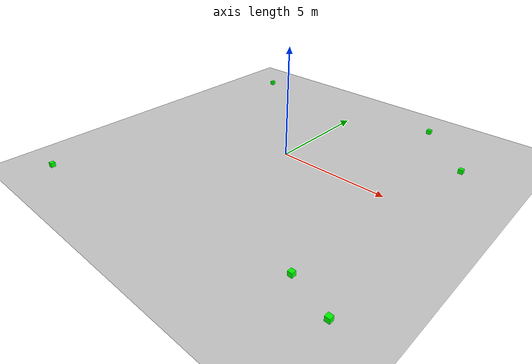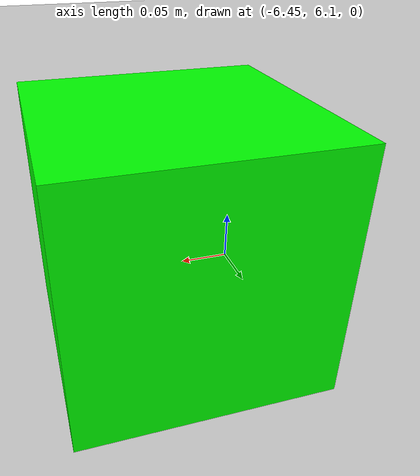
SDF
<sdf version="1.7">
 <world name="default">
  <light name="sun" type="directional">
   <pose>0 0 10 0 -0 0</pose>
   <diffuse>0.8 0.8 0.8 1</diffuse>
   <specular>0.2 0.2 0.2 1</specular>
   <attenuation>
    <range>1000</range>
    <constant>0.9</constant>
    <linear>0.01</linear>
    <quadratic>0.001</quadratic>
   </attenuation>
   <direction>-0.5 0.1 -0.9</direction>
   <spot><inner_angle>0</inner_angle><outer_angle>0</outer_angle><falloff>0</falloff></spot>
  </light>
  <model name="ground_plane">
   <static>1</static>
   <link name="link">
    <collision name="collision">
     <geometry><plane><normal>0 0 1</normal><size>100 100</size></plane></geometry>
     <surface>
      <contact><collide_bitmask>65535</collide_bitmask></contact>
      <friction><ode><mu>100</mu><mu2>50</mu2></ode></friction>
     </surface>
    </collision>
    <visual name="visual">
     <cast_shadows>0</cast_shadows>
     <geometry><plane><normal>0 0 1</normal><size>100 100</size></plane></geometry>
     <material>
      <script><uri>file://media/materials/scripts/gazebo.material</uri><name>Gazebo/Grey</name></script>
     </material>
    </visual>
   </link>
  </model>
  <gravity>0 0 -9.8</gravity>
  <magnetic_field>6e-06 2.3e-05 -4.2e-05</magnetic_field>
  <atmosphere type="adiabatic"/>
  <physics type="ode">
   <max_step_size>0.001</max_step_size>
   <real_time_factor>1</real_time_factor>
   <real_time_update_rate>1000</real_time_update_rate>
  </physics>
  <scene><ambient>0.4 0.4 0.4 1</ambient><background>0.7 0.7 0.7 1</background><shadows>1</shadows></scene>
  <spherical_coordinates>
   <surface_model>EARTH_WGS84</surface_model>
   <latitude_deg>0</latitude_deg>
   <longitude_deg>0</longitude_deg>
   <elevation>0</elevation>
   <heading_deg>0</heading_deg>
  </spherical_coordinates>
  <model name="green">
   <link name="link">
    <inertial>
     <mass>1</mass>
     <inertia>
      <ixx>0.166667</ixx>
      <ixy>0</ixy>
      <ixz>0</ixz>
      <iyy>0.166667</iyy>
      <iyz>0</iyz>
      <izz>0.166667</izz>
     </inertia>
    </inertial>
    <visual name="visual">
     <geometry><box><size>0.2 0.2 0.2</size></box></geometry>
     <material>
      <script><name>Gazebo/Grey</name><uri>file://media/materials/scripts/gazebo.material</uri></script>
      <shader type="pixel"><normal_map>__default__</normal_map></shader>
      <ambient>0 1 0 1</ambient>
      <diffuse>0 1 0 1</diffuse>
      <specular>0 1 0 1</specular>
      <emissive>0 0 0 1</emissive>
     </material>
    </visual>
    <collision name="collision">
     <geometry><box><size>1 1 1</size></box></geometry>
     <surface>
      <friction>
       <ode><mu>1</mu><mu2>1</mu2><fdir1>0 0 0</fdir1><slip1>0</slip1><slip2>0</slip2></ode>
       <torsional>
        <coefficient>1</coefficient>
        <patch_radius>0</patch_radius>
        <surface_radius>0</surface_radius>
        <use_patch_radius>1</use_patch_radius>
        <ode><slip>0</slip></ode>
       </torsional>
      </friction>
      <bounce><restitution_coefficient>0</restitution_coefficient><threshold>1e+06</threshold></bounce>
      <contact>
       <collide_without_contact>0</collide_without_contact>
       <collide_without_contact_bitmask>1</collide_without_contact_bitmask>
       <collide_bitmask>1</collide_bitmask>
       <ode>
        <soft_cfm>0</soft_cfm>
        <soft_erp>0.2</soft_erp>
        <kp>1e+13</kp>
        <kd>1</kd>
        <max_vel>0.01</max_vel>
        <min_depth>0</min_depth>
       </ode>
       <bullet>
        <split_impulse>1</split_impulse>
        <split_impulse_penetration_threshold>-0.01</split_impulse_penetration_threshold>
        <soft_cfm>0</soft_cfm>
        <soft_erp>0.2</soft_erp>
        <kp>1e+13</kp>
        <kd>1</kd>
       </bullet>
      </contact>
     </surface>
    </collision>
   </link>
   <static>0</static>
   <pose>-6.62798 -7.88323 0.113019 -1e-05 0 0</pose>
  </model>
  <model name="green_clone">
   <link name="link">
    <inertial>
     <mass>1</mass>
     <inertia>
      <ixx>0.166667</ixx>
      <ixy>0</ixy>
      <ixz>0</ixz>
      <iyy>0.166667</iyy>
      <iyz>0</iyz>
      <izz>0.166667</izz>
     </inertia>
    </inertial>
    <visual name="visual">
     <geometry><box><size>0.2 0.2 0.2</size></box></geometry>
     <material>
      <script><name>Gazebo/Grey</name><uri>file://media/materials/scripts/gazebo.material</uri></script>
      <shader type="pixel"><normal_map>__default__</normal_map></shader>
      <ambient>0 1 0 1</ambient>
      <diffuse>0 1 0 1</diffuse>
      <specular>0 1 0 1</specular>
      <emissive>0 0 0 1</emissive>
     </material>
    </visual>
    <collision name="collision">
     <geometry><box><size>1 1 1</size></box></geometry>
     <surface>
      <friction>
       <ode><mu>1</mu><mu2>1</mu2><fdir1>0 0 0</fdir1><slip1>0</slip1><slip2>0</slip2></ode>
       <torsional>
        <coefficient>1</coefficient>
        <patch_radius>0</patch_radius>
        <surface_radius>0</surface_radius>
        <use_patch_radius>1</use_patch_radius>
        <ode><slip>0</slip></ode>
       </torsional>
      </friction>
      <bounce><restitution_coefficient>0</restitution_coefficient><threshold>1e+06</threshold></bounce>
      <contact>
       <collide_without_contact>0</collide_without_contact>
       <collide_without_contact_bitmask>1</collide_without_contact_bitmask>
       <collide_bitmask>1</collide_bitmask>
       <ode>
        <soft_cfm>0</soft_cfm>
        <soft_erp>0.2</soft_erp>
        <kp>1e+13</kp>
        <kd>1</kd>
        <max_vel>0.01</max_vel>
        <min_depth>0</min_depth>
       </ode>
       <bullet>
        <split_impulse>1</split_impulse>
        <split_impulse_penetration_threshold>-0.01</split_impulse_penetration_threshold>
        <soft_cfm>0</soft_cfm>
        <soft_erp>0.2</soft_erp>
        <kp>1e+13</kp>
        <kd>1</kd>
       </bullet>
      </contact>
     </surface>
    </collision>
   </link>
   <static>0</static>
   <pose>5.22319 -5.86787 0.113019 -1e-05 0 0</pose>
  </model>
  <model name="green_clone_0">
   <link name="link">
    <inertial>
     <mass>1</mass>
     <inertia>
      <ixx>0.166667</ixx>
      <ixy>0</ixy>
      <ixz>0</ixz>
      <iyy>0.166667</iyy>
      <iyz>0</iyz>
      <izz>0.166667</izz>
     </inertia>
    </inertial>
    <visual name="visual">
     <geometry><box><size>0.2 0.2 0.2</size></box></geometry>
     <material>
      <script><name>Gazebo/Grey</name><uri>file://media/materials/scripts/gazebo.material</uri></script>
      <shader type="pixel"><normal_map>__default__</normal_map></shader>
      <ambient>0 1 0 1</ambient>
      <diffuse>0 1 0 1</diffuse>
      <specular>0 1 0 1</specular>
      <emissive>0 0 0 1</emissive>
     </material>
    </visual>
    <collision name="collision">
     <geometry><box><size>1 1 1</size></box></geometry>
     <surface>
      <friction>
       <ode><mu>1</mu><mu2>1</mu2><fdir1>0 0 0</fdir1><slip1>0</slip1><slip2>0</slip2></ode>
       <torsional>
        <coefficient>1</coefficient>
        <patch_radius>0</patch_radius>
        <surface_radius>0</surface_radius>
        <use_patch_radius>1</use_patch_radius>
        <ode><slip>0</slip></ode>
       </torsional>
      </friction>
      <bounce><restitution_coefficient>0</restitution_coefficient><threshold>1e+06</threshold></bounce>
      <contact>
       <collide_without_contact>0</collide_without_contact>
       <collide_without_contact_bitmask>1</collide_without_contact_bitmask>
       <collide_bitmask>1</collide_bitmask>
       <ode>
        <soft_cfm>0</soft_cfm>
        <soft_erp>0.2</soft_erp>
        <kp>1e+13</kp>
        <kd>1</kd>
        <max_vel>0.01</max_vel>
        <min_depth>0</min_depth>
       </ode>
       <bullet>
        <split_impulse>1</split_impulse>
        <split_impulse_penetration_threshold>-0.01</split_impulse_penetration_threshold>
        <soft_cfm>0</soft_cfm>
        <soft_erp>0.2</soft_erp>
        <kp>1e+13</kp>
        <kd>1</kd>
       </bullet>
      </contact>
     </surface>
    </collision>
   </link>
   <static>0</static>
   <pose>7.13238 -6.52536 0.113019 -1e-05 0 0</pose>
  </model>
  <model name="green_clone_1">
   <link name="link">
    <inertial>
     <mass>1</mass>
     <inertia>
      <ixx>0.166667</ixx>
      <ixy>0</ixy>
      <ixz>0</ixz>
      <iyy>0.166667</iyy>
      <iyz>0</iyz>
      <izz>0.166667</izz>
     </inertia>
    </inertial>
    <visual name="visual">
     <geometry><box><size>0.2 0.2 0.2</size></box></geometry>
     <material>
      <script><name>Gazebo/Grey</name><uri>file://media/materials/scripts/gazebo.material</uri></script>
      <shader type="pixel"><normal_map>__default__</normal_map></shader>
      <ambient>0 1 0 1</ambient>
      <diffuse>0 1 0 1</diffuse>
      <specular>0 1 0 1</specular>
      <emissive>0 0 0 1</emissive>
     </material>
    </visual>
    <collision name="collision">
     <geometry><box><size>1 1 1</size></box></geometry>
     <surface>
      <friction>
       <ode><mu>1</mu><mu2>1</mu2><fdir1>0 0 0</fdir1><slip1>0</slip1><slip2>0</slip2></ode>
       <torsional>
        <coefficient>1</coefficient>
        <patch_radius>0</patch_radius>
        <surface_radius>0</surface_radius>
        <use_patch_radius>1</use_patch_radius>
        <ode><slip>0</slip></ode>
       </torsional>
      </friction>
      <bounce><restitution_coefficient>0</restitution_coefficient><threshold>1e+06</threshold></bounce>
      <contact>
       <collide_without_contact>0</collide_without_contact>
       <collide_without_contact_bitmask>1</collide_without_contact_bitmask>
       <collide_bitmask>1</collide_bitmask>
       <ode>
        <soft_cfm>0</soft_cfm>
        <soft_erp>0.2</soft_erp>
        <kp>1e+13</kp>
        <kd>1</kd>
        <max_vel>0.01</max_vel>
        <min_depth>0</min_depth>
       </ode>
       <bullet>
        <split_impulse>1</split_impulse>
        <split_impulse_penetration_threshold>-0.01</split_impulse_penetration_threshold>
        <soft_cfm>0</soft_cfm>
        <soft_erp>0.2</soft_erp>
        <kp>1e+13</kp>
        <kd>1</kd>
       </bullet>
      </contact>
     </surface>
    </collision>
   </link>
   <static>0</static>
   <pose>6.47455 3.85546 0.113019 -1e-05 0 0</pose>
  </model>
  <model name="green_clone_2">
   <link name="link">
    <inertial>
     <mass>1</mass>
     <inertia>
      <ixx>0.166667</ixx>
      <ixy>0</ixy>
      <ixz>0</ixz>
      <iyy>0.166667</iyy>
      <iyz>0</iyz>
      <izz>0.166667</izz>
     </inertia>
    </inertial>
    <visual name="visual">
     <geometry><box><size>0.2 0.2 0.2</size></box></geometry>
     <material>
      <script><name>Gazebo/Grey</name><uri>file://media/materials/scripts/gazebo.material</uri></script>
      <shader type="pixel"><normal_map>__default__</normal_map></shader>
      <ambient>0 1 0 1</ambient>
      <diffuse>0 1 0 1</diffuse>
      <specular>0 1 0 1</specular>
      <emissive>0 0 0 1</emissive>
     </material>
    </visual>
    <collision name="collision">
     <geometry><box><size>1 1 1</size></box></geometry>
     <surface>
      <friction>
       <ode><mu>1</mu><mu2>1</mu2><fdir1>0 0 0</fdir1><slip1>0</slip1><slip2>0</slip2></ode>
       <torsional>
        <coefficient>1</coefficient>
        <patch_radius>0</patch_radius>
        <surface_radius>0</surface_radius>
        <use_patch_radius>1</use_patch_radius>
        <ode><slip>0</slip></ode>
       </torsional>
      </friction>
      <bounce><restitution_coefficient>0</restitution_coefficient><threshold>1e+06</threshold></bounce>
      <contact>
       <collide_without_contact>0</collide_without_contact>
       <collide_without_contact_bitmask>1</collide_without_contact_bitmask>
       <collide_bitmask>1</collide_bitmask>
       <ode>
        <soft_cfm>0</soft_cfm>
        <soft_erp>0.2</soft_erp>
        <kp>1e+13</kp>
        <kd>1</kd>
        <max_vel>0.01</max_vel>
        <min_depth>0</min_depth>
       </ode>
       <bullet>
        <split_impulse>1</split_impulse>
        <split_impulse_penetration_threshold>-0.01</split_impulse_penetration_threshold>
        <soft_cfm>0</soft_cfm>
        <soft_erp>0.2</soft_erp>
        <kp>1e+13</kp>
        <kd>1</kd>
       </bullet>
      </contact>
     </surface>
    </collision>
   </link>
   <static>0</static>
   <pose>3.76809 6.45844 0.113019 -1e-05 0 0</pose>
  </model>
  <model name="green_clone_3">
   <link name="link">
    <inertial>
     <mass>1</mass>
     <inertia>
      <ixx>0.166667</ixx>
      <ixy>0</ixy>
      <ixz>0</ixz>
      <iyy>0.166667</iyy>
      <iyz>0</iyz>
      <izz>0.166667</izz>
     </inertia>
    </inertial>
    <visual name="visual">
     <geometry><box><size>0.2 0.2 0.2</size></box></geometry>
     <material>
      <script><name>Gazebo/Grey</name><uri>file://media/materials/scripts/gazebo.material</uri></script>
      <shader type="pixel"><normal_map>__default__</normal_map></shader>
      <ambient>0 1 0 1</ambient>
      <diffuse>0 1 0 1</diffuse>
      <specular>0 1 0 1</specular>
      <emissive>0 0 0 1</emissive>
     </material>
    </visual>
    <collision name="collision">
     <geometry><box><size>1 1 1</size></box></geometry>
     <surface>
      <friction>
       <ode><mu>1</mu><mu2>1</mu2><fdir1>0 0 0</fdir1><slip1>0</slip1><slip2>0</slip2></ode>
       <torsional>
        <coefficient>1</coefficient>
        <patch_radius>0</patch_radius>
        <surface_radius>0</surface_radius>
        <use_patch_radius>1</use_patch_radius>
        <ode><slip>0</slip></ode>
       </torsional>
      </friction>
      <bounce><restitution_coefficient>0</restitution_coefficient><threshold>1e+06</threshold></bounce>
      <contact>
       <collide_without_contact>0</collide_without_contact>
       <collide_without_contact_bitmask>1</collide_without_contact_bitmask>
       <collide_bitmask>1</collide_bitmask>
       <ode>
        <soft_cfm>0</soft_cfm>
        <soft_erp>0.2</soft_erp>
        <kp>1e+13</kp>
        <kd>1</kd>
        <max_vel>0.01</max_vel>
        <min_depth>0</min_depth>
       </ode>
       <bullet>
        <split_impulse>1</split_impulse>
        <split_impulse_penetration_threshold>-0.01</split_impulse_penetration_threshold>
        <soft_cfm>0</soft_cfm>
        <soft_erp>0.2</soft_erp>
        <kp>1e+13</kp>
        <kd>1</kd>
       </bullet>
      </contact>
     </surface>
    </collision>
   </link>
   <static>0</static>
   <pose>-6.35241 6.22163 0.113019 -1e-05 0 0</pose>
  </model>
 </world>
</sdf>
